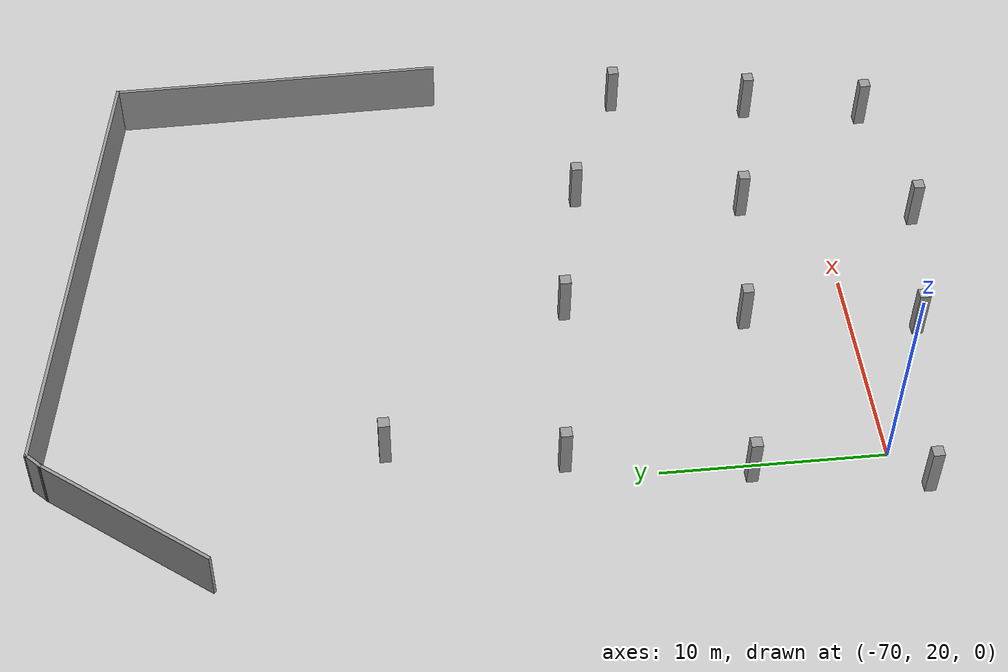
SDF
<sdf version="1.6">
 <world name="default">
  <model name="ground_plane">
   <static>1</static>
   <link name="link">
    <collision name="collision">
     <geometry><plane><normal>0 0 1</normal><size>100 100</size></plane></geometry>
     <surface>
      <contact><collide_bitmask>65535</collide_bitmask></contact>
      <friction><ode><mu>100</mu><mu2>50</mu2></ode></friction>
     </surface>
    </collision>
    <visual name="visual">
     <cast_shadows>0</cast_shadows>
     <geometry><plane><normal>0 0 1</normal><size>100 100</size></plane></geometry>
     <material>
      <script><uri>file://media/materials/scripts/gazebo.material</uri><name>Gazebo/Grey</name></script>
     </material>
    </visual>
   </link>
  </model>
  <model name="parking_area_big_2">
   <pose>0.028574 -0.058085 0 0 -0 0</pose>
   <link name="Wall_0">
    <collision name="Wall_0_Collision">
     <geometry><box><size>22.294 0.15 2.5</size></box></geometry>
     <pose>0 0 1.25 0 -0 0</pose>
    </collision>
    <visual name="Wall_0_Visual">
     <pose>0 0 1.25 0 -0 0</pose>
     <geometry><box><size>22.294 0.15 2.5</size></box></geometry>
     <material>
      <script><uri>file://media/materials/scripts/gazebo.material</uri><name>Gazebo/Grey</name></script>
      <ambient>1 1 1 1</ambient>
     </material>
     <meta><layer>0</layer></meta>
    </visual>
    <pose>-57.2743 54.9475 0 0 -0 -0.164921</pose>
   </link>
   <link name="Wall_1">
    <collision name="Wall_1_Collision">
     <geometry><box><size>15.538 0.15 2.5</size></box></geometry>
     <pose>0 0 1.25 0 -0 0</pose>
    </collision>
    <visual name="Wall_1_Visual">
     <pose>0 0 1.25 0 -0 0</pose>
     <geometry><box><size>15.538 0.15 2.5</size></box></geometry>
     <material>
      <script><uri>file://media/materials/scripts/gazebo.material</uri><name>Gazebo/Grey</name></script>
      <ambient>1 1 1 1</ambient>
     </material>
     <meta><layer>0</layer></meta>
    </visual>
    <pose>-46.2467 45.4365 0 0 -0 -1.55705</pose>
   </link>
   <link name="Wall_10">
    <collision name="Wall_10_Collision">
     <geometry><box><size>8.88214 0.15 2.5</size></box></geometry>
     <pose>0 0 1.25 0 -0 0</pose>
    </collision>
    <visual name="Wall_10_Visual">
     <pose>0 0 1.25 0 -0 0</pose>
     <geometry><box><size>8.88214 0.15 2.5</size></box></geometry>
     <material>
      <script><uri>file://media/materials/scripts/gazebo.material</uri><name>Gazebo/Grey</name></script>
      <ambient>1 1 1 1</ambient>
     </material>
     <meta><layer>0</layer></meta>
    </visual>
    <pose>-71.4701 52.712 0 0 -0 0.911925</pose>
   </link>
   <link name="Wall_140">
    <collision name="Wall_140_Collision">
     <geometry><box><size>0.51 0.5 2.5</size></box></geometry>
     <pose>0 0 1.25 0 -0 0</pose>
    </collision>
    <visual name="Wall_140_Visual">
     <pose>0 0 1.25 0 -0 0</pose>
     <geometry><box><size>0.51 0.5 2.5</size></box></geometry>
     <material>
      <script><uri>file://media/materials/scripts/gazebo.material</uri><name>Gazebo/Grey</name></script>
      <ambient>1 1 1 1</ambient>
     </material>
     <meta><layer>0</layer></meta>
    </visual>
    <pose>-47.2516 28.8876 0 0 -0 0</pose>
   </link>
   <link name="Wall_142">
    <collision name="Wall_142_Collision">
     <geometry><box><size>0.51 0.5 2.5</size></box></geometry>
     <pose>0 0 1.25 0 -0 0</pose>
    </collision>
    <visual name="Wall_142_Visual">
     <pose>0 0 1.25 0 -0 0</pose>
     <geometry><box><size>0.51 0.5 2.5</size></box></geometry>
     <material>
      <script><uri>file://media/materials/scripts/gazebo.material</uri><name>Gazebo/Grey</name></script>
      <ambient>1 1 1 1</ambient>
     </material>
     <meta><layer>0</layer></meta>
    </visual>
    <pose>-48.3892 22.3626 0 0 -0 0</pose>
   </link>
   <link name="Wall_144">
    <collision name="Wall_144_Collision">
     <geometry><box><size>0.51 0.5 2.5</size></box></geometry>
     <pose>0 0 1.25 0 -0 0</pose>
    </collision>
    <visual name="Wall_144_Visual">
     <pose>0 0 1.25 0 -0 0</pose>
     <geometry><box><size>0.51 0.5 2.5</size></box></geometry>
     <material>
      <script><uri>file://media/materials/scripts/gazebo.material</uri><name>Gazebo/Grey</name></script>
      <ambient>1 1 1 1</ambient>
     </material>
     <meta><layer>0</layer></meta>
    </visual>
    <pose>-49.3854 16.7562 0 0 -0 0</pose>
   </link>
   <link name="Wall_146">
    <collision name="Wall_146_Collision">
     <geometry><box><size>0.51 0.5 2.5</size></box></geometry>
     <pose>0 0 1.25 0 -0 0</pose>
    </collision>
    <visual name="Wall_146_Visual">
     <pose>0 0 1.25 0 -0 0</pose>
     <geometry><box><size>0.51 0.5 2.5</size></box></geometry>
     <material>
      <script><uri>file://media/materials/scripts/gazebo.material</uri><name>Gazebo/Grey</name></script>
      <ambient>1 1 1 1</ambient>
     </material>
     <meta><layer>0</layer></meta>
    </visual>
    <pose>-55.0202 23.7748 0 0 -0 0</pose>
   </link>
   <link name="Wall_148">
    <collision name="Wall_148_Collision">
     <geometry><box><size>0.51 0.5 2.5</size></box></geometry>
     <pose>0 0 1.25 0 -0 0</pose>
    </collision>
    <visual name="Wall_148_Visual">
     <pose>0 0 1.25 0 -0 0</pose>
     <geometry><box><size>0.51 0.5 2.5</size></box></geometry>
     <material>
      <script><uri>file://media/materials/scripts/gazebo.material</uri><name>Gazebo/Grey</name></script>
      <ambient>1 1 1 1</ambient>
     </material>
     <meta><layer>0</layer></meta>
    </visual>
    <pose>-62.0556 24.9172 0 0 -0 0</pose>
   </link>
   <link name="Wall_15">
    <collision name="Wall_15_Collision">
     <geometry><box><size>1 0.15 2.5</size></box></geometry>
     <pose>0 0 1.25 0 -0 0</pose>
    </collision>
    <visual name="Wall_15_Visual">
     <pose>0 0 1.25 0 -0 0</pose>
     <geometry><box><size>1 0.15 2.5</size></box></geometry>
     <material>
      <script><uri>file://media/materials/scripts/gazebo.material</uri><name>Gazebo/Grey</name></script>
      <ambient>1 1 1 1</ambient>
     </material>
     <meta><layer>0</layer></meta>
    </visual>
    <pose>-68.4965 56.4647 0 0 -0 0.785398</pose>
   </link>
   <link name="Wall_150">
    <collision name="Wall_150_Collision">
     <geometry><box><size>0.51 0.5 2.5</size></box></geometry>
     <pose>0 0 1.25 0 -0 0</pose>
    </collision>
    <visual name="Wall_150_Visual">
     <pose>0 0 1.25 0 -0 0</pose>
     <geometry><box><size>0.51 0.5 2.5</size></box></geometry>
     <material>
      <script><uri>file://media/materials/scripts/gazebo.material</uri><name>Gazebo/Grey</name></script>
      <ambient>1 1 1 1</ambient>
     </material>
     <meta><layer>0</layer></meta>
    </visual>
    <pose>-56.4237 15.7517 0 0 -0 0</pose>
   </link>
   <link name="Wall_156">
    <collision name="Wall_156_Collision">
     <geometry><box><size>0.51 0.5 2.5</size></box></geometry>
     <pose>0 0 1.25 0 -0 0</pose>
    </collision>
    <visual name="Wall_156_Visual">
     <pose>0 0 1.25 0 -0 0</pose>
     <geometry><box><size>0.51 0.5 2.5</size></box></geometry>
     <material>
      <script><uri>file://media/materials/scripts/gazebo.material</uri><name>Gazebo/Grey</name></script>
      <ambient>1 1 1 1</ambient>
     </material>
     <meta><layer>0</layer></meta>
    </visual>
    <pose>-63.1472 17.117 0 0 -0 0</pose>
   </link>
   <link name="Wall_158">
    <collision name="Wall_158_Collision">
     <geometry><box><size>0.51 0.5 2.5</size></box></geometry>
     <pose>0 0 1.25 0 -0 0</pose>
    </collision>
    <visual name="Wall_158_Visual">
     <pose>0 0 1.25 0 -0 0</pose>
     <geometry><box><size>0.51 0.5 2.5</size></box></geometry>
     <material>
      <script><uri>file://media/materials/scripts/gazebo.material</uri><name>Gazebo/Grey</name></script>
      <ambient>1 1 1 1</ambient>
     </material>
     <meta><layer>0</layer></meta>
    </visual>
    <pose>-69.284 34.0738 0 0 -0 0</pose>
   </link>
   <link name="Wall_160">
    <collision name="Wall_160_Collision">
     <geometry><box><size>0.51 0.5 2.5</size></box></geometry>
     <pose>0 0 1.25 0 -0 0</pose>
    </collision>
    <visual name="Wall_160_Visual">
     <pose>0 0 1.25 0 -0 0</pose>
     <geometry><box><size>0.51 0.5 2.5</size></box></geometry>
     <material>
      <script><uri>file://media/materials/scripts/gazebo.material</uri><name>Gazebo/Grey</name></script>
      <ambient>1 1 1 1</ambient>
     </material>
     <meta><layer>0</layer></meta>
    </visual>
    <pose>-53.6493 31.545 0 0 -0 0</pose>
   </link>
   <link name="Wall_162">
    <collision name="Wall_162_Collision">
     <geometry><box><size>0.51 0.5 2.5</size></box></geometry>
     <pose>0 0 1.25 0 -0 0</pose>
    </collision>
    <visual name="Wall_162_Visual">
     <pose>0 0 1.25 0 -0 0</pose>
     <geometry><box><size>0.51 0.5 2.5</size></box></geometry>
     <material>
      <script><uri>file://media/materials/scripts/gazebo.material</uri><name>Gazebo/Grey</name></script>
      <ambient>1 1 1 1</ambient>
     </material>
     <meta><layer>0</layer></meta>
    </visual>
    <pose>-60.7046 32.9965 0 0 -0 0</pose>
   </link>
   <link name="Wall_164">
    <collision name="Wall_164_Collision">
     <geometry><box><size>0.51 0.5 2.5</size></box></geometry>
     <pose>0 0 1.25 0 -0 0</pose>
    </collision>
    <visual name="Wall_164_Visual">
     <pose>0 0 1.25 0 -0 0</pose>
     <geometry><box><size>0.51 0.5 2.5</size></box></geometry>
     <material>
      <script><uri>file://media/materials/scripts/gazebo.material</uri><name>Gazebo/Grey</name></script>
      <ambient>1 1 1 1</ambient>
     </material>
     <meta><layer>0</layer></meta>
    </visual>
    <pose>-70.6184 26.1599 0 0 -0 0</pose>
   </link>
   <link name="Wall_166">
    <collision name="Wall_166_Collision">
     <geometry><box><size>0.51 0.5 2.5</size></box></geometry>
     <pose>0 0 1.25 0 -0 0</pose>
    </collision>
    <visual name="Wall_166_Visual">
     <pose>0 0 1.25 0 -0 0</pose>
     <geometry><box><size>0.51 0.5 2.5</size></box></geometry>
     <material>
      <script><uri>file://media/materials/scripts/gazebo.material</uri><name>Gazebo/Grey</name></script>
      <ambient>1 1 1 1</ambient>
     </material>
     <meta><layer>0</layer></meta>
    </visual>
    <pose>-71.8619 18.6695 0 0 -0 0</pose>
   </link>
   <link name="Wall_532">
    <collision name="Wall_532_Collision">
     <geometry><box><size>0.51 0.5 2.5</size></box></geometry>
     <pose>0 0 1.25 0 -0 0</pose>
    </collision>
    <visual name="Wall_532_Visual">
     <pose>0 0 1.25 0 -0 0</pose>
     <geometry><box><size>0.51 0.5 2.5</size></box></geometry>
     <material>
      <script><uri>file://media/materials/scripts/gazebo.material</uri><name>Gazebo/Grey</name></script>
      <ambient>1 1 1 1</ambient>
     </material>
     <meta><layer>0</layer></meta>
    </visual>
    <pose>-67.9857 41.7324 0 0 -0 0</pose>
   </link>
   <static>1</static>
  </model>
 </world>
</sdf>
